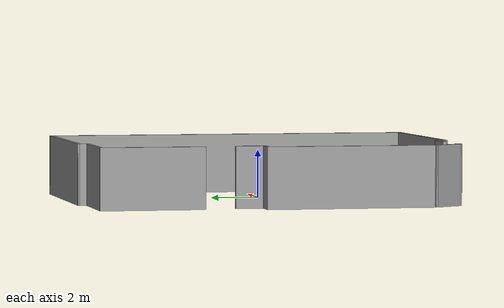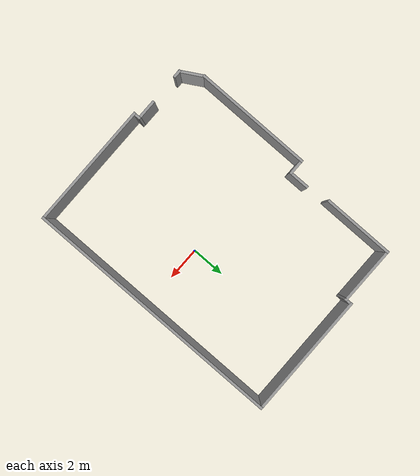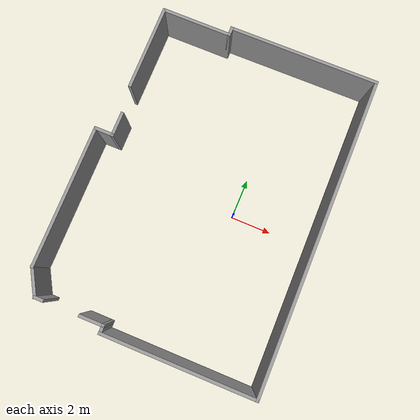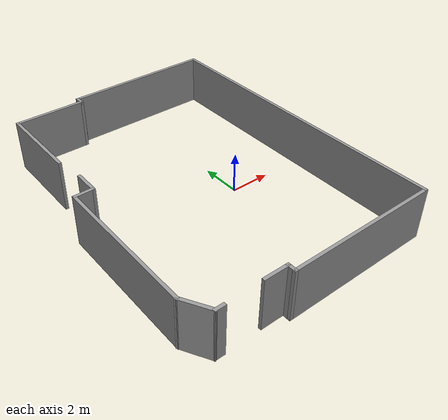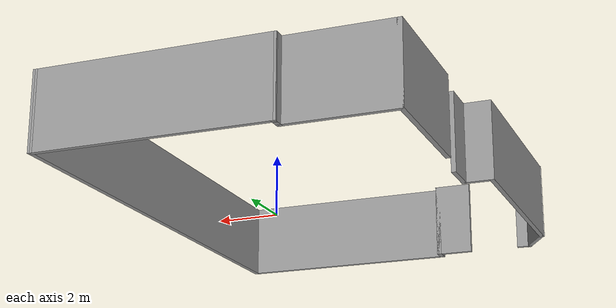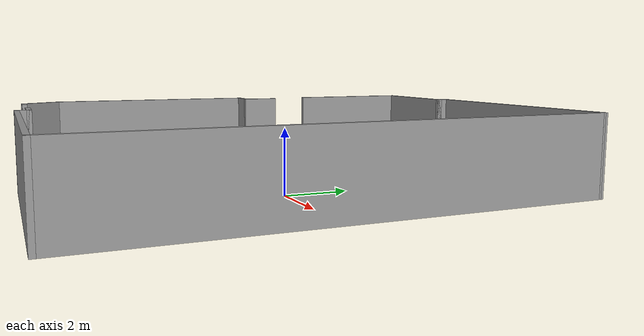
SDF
<?xml version='1.0'?>
<sdf version='1.7'>
  <model name='TD_1'>
    <pose>-1.76747 0.497206 0 0 -0 0</pose>
    <link name='Wall_0'>
      <collision name='Wall_0_Collision'>
        <geometry>
          <box>
            <size>15.5 0.15 2.5</size>
          </box>
        </geometry>
        <pose>0 0 1.25 0 -0 0</pose>
      </collision>
      <visual name='Wall_0_Visual'>
        <pose>0 0 1.25 0 -0 0</pose>
        <geometry>
          <box>
            <size>15.5 0.15 2.5</size>
          </box>
        </geometry>
        <material>
          <script>
            <uri>file://media/materials/scripts/gazebo.material</uri>
            <name>Gazebo/Grey</name>
          </script>
          <ambient>1 1 1 1</ambient>
        </material>
        <meta>
          <layer>0</layer>
        </meta>
      </visual>
      <pose>5.66089 -0.000216 0 0 -0 -1.5708</pose>
    </link>
    <link name='Wall_1'>
      <collision name='Wall_1_Collision'>
        <geometry>
          <box>
            <size>7.5 0.15 2.5</size>
          </box>
        </geometry>
        <pose>0 0 1.25 0 -0 0</pose>
      </collision>
      <visual name='Wall_1_Visual'>
        <pose>0 0 1.25 0 -0 0</pose>
        <geometry>
          <box>
            <size>7.5 0.15 2.5</size>
          </box>
        </geometry>
        <material>
          <script>
            <uri>file://media/materials/scripts/gazebo.material</uri>
            <name>Gazebo/Grey</name>
          </script>
          <ambient>1 1 1 1</ambient>
        </material>
        <meta>
          <layer>0</layer>
        </meta>
      </visual>
      <pose>1.98589 -7.67522 0 0 -0 3.14159</pose>
    </link>
    <link name='Wall_10'>
      <collision name='Wall_10_Collision'>
        <geometry>
          <box>
            <size>1 0.15 2.5</size>
          </box>
        </geometry>
        <pose>0 0 1.25 0 -0 0</pose>
      </collision>
      <visual name='Wall_10_Visual'>
        <pose>0 0 1.25 0 -0 0</pose>
        <geometry>
          <box>
            <size>1 0.15 2.5</size>
          </box>
        </geometry>
        <material>
          <script>
            <uri>file://media/materials/scripts/gazebo.material</uri>
            <name>Gazebo/Grey</name>
          </script>
          <ambient>1 1 1 1</ambient>
        </material>
        <meta>
          <layer>0</layer>
        </meta>
      </visual>
      <pose>-5.20887 0.669584 0 0 -0 0</pose>
    </link>
    <link name='Wall_11'>
      <collision name='Wall_11_Collision'>
        <geometry>
          <box>
            <size>1.25 0.15 2.5</size>
          </box>
        </geometry>
        <pose>0 0 1.25 0 -0 0</pose>
      </collision>
      <visual name='Wall_11_Visual'>
        <pose>0 0 1.25 0 -0 0</pose>
        <geometry>
          <box>
            <size>1.25 0.15 2.5</size>
          </box>
        </geometry>
        <material>
          <script>
            <uri>file://media/materials/scripts/gazebo.material</uri>
            <name>Gazebo/Grey</name>
          </script>
          <ambient>1 1 1 1</ambient>
        </material>
        <meta>
          <layer>0</layer>
        </meta>
      </visual>
      <pose>-4.78387 1.21958 0 0 -0 1.5708</pose>
    </link>
    <link name='Wall_13'>
      <collision name='Wall_13_Collision'>
        <geometry>
          <box>
            <size>4.25 0.15 2.5</size>
          </box>
        </geometry>
        <pose>0 0 1.25 0 -0 0</pose>
      </collision>
      <visual name='Wall_13_Visual'>
        <pose>0 0 1.25 0 -0 0</pose>
        <geometry>
          <box>
            <size>4.25 0.15 2.5</size>
          </box>
        </geometry>
        <material>
          <script>
            <uri>file://media/materials/scripts/gazebo.material</uri>
            <name>Gazebo/Grey</name>
          </script>
          <ambient>1 1 1 1</ambient>
        </material>
        <meta>
          <layer>0</layer>
        </meta>
      </visual>
      <pose>-4.98572 5.23253 0 0 -0 1.5708</pose>
    </link>
    <link name='Wall_14'>
      <collision name='Wall_14_Collision'>
        <geometry>
          <box>
            <size>3.5 0.15 2.5</size>
          </box>
        </geometry>
        <pose>0 0 1.25 0 -0 0</pose>
      </collision>
      <visual name='Wall_14_Visual'>
        <pose>0 0 1.25 0 -0 0</pose>
        <geometry>
          <box>
            <size>3.5 0.15 2.5</size>
          </box>
        </geometry>
        <material>
          <script>
            <uri>file://media/materials/scripts/gazebo.material</uri>
            <name>Gazebo/Grey</name>
          </script>
          <ambient>1 1 1 1</ambient>
        </material>
        <meta>
          <layer>0</layer>
        </meta>
      </visual>
      <pose>-3.31072 7.28253 0 0 -0 0</pose>
    </link>
    <link name='Wall_2'>
      <collision name='Wall_2_Collision'>
        <geometry>
          <box>
            <size>0.5 0.15 2.5</size>
          </box>
        </geometry>
        <pose>0 0 1.25 0 -0 0</pose>
      </collision>
      <visual name='Wall_2_Visual'>
        <pose>0 0 1.25 0 -0 0</pose>
        <geometry>
          <box>
            <size>0.5 0.15 2.5</size>
          </box>
        </geometry>
        <material>
          <script>
            <uri>file://media/materials/scripts/gazebo.material</uri>
            <name>Gazebo/Grey</name>
          </script>
          <ambient>1 1 1 1</ambient>
        </material>
        <meta>
          <layer>0</layer>
        </meta>
      </visual>
      <pose>-1.68911 -7.50022 0 0 -0 1.5708</pose>
    </link>
    <link name='Wall_28'>
      <collision name='Wall_28_Collision'>
        <geometry>
          <box>
            <size>0.5 0.15 2.5</size>
          </box>
        </geometry>
        <pose>0 0 1.25 0 -0 0</pose>
      </collision>
      <visual name='Wall_28_Visual'>
        <pose>0 0 1.25 0 -0 0</pose>
        <geometry>
          <box>
            <size>0.5 0.15 2.5</size>
          </box>
        </geometry>
        <material>
          <script>
            <uri>file://media/materials/scripts/gazebo.material</uri>
            <name>Gazebo/Grey</name>
          </script>
          <ambient>1 1 1 1</ambient>
        </material>
        <meta>
          <layer>0</layer>
        </meta>
      </visual>
      <pose>-1.63572 7.45753 0 0 -0 1.5708</pose>
    </link>
    <link name='Wall_29'>
      <collision name='Wall_29_Collision'>
        <geometry>
          <box>
            <size>7.44673 0.15 2.5</size>
          </box>
        </geometry>
        <pose>0 0 1.25 0 -0 0</pose>
      </collision>
      <visual name='Wall_29_Visual'>
        <pose>0 0 1.25 0 -0 0</pose>
        <geometry>
          <box>
            <size>7.44673 0.15 2.5</size>
          </box>
        </geometry>
        <material>
          <script>
            <uri>file://media/materials/scripts/gazebo.material</uri>
            <name>Gazebo/Grey</name>
          </script>
          <ambient>1 1 1 1</ambient>
        </material>
        <meta>
          <layer>0</layer>
        </meta>
      </visual>
      <pose>2.01259 7.65366 0 0 -0 0.00579</pose>
    </link>
    <link name='Wall_3'>
      <collision name='Wall_3_Collision'>
        <geometry>
          <box>
            <size>1.25 0.15 2.5</size>
          </box>
        </geometry>
        <pose>0 0 1.25 0 -0 0</pose>
      </collision>
      <visual name='Wall_3_Visual'>
        <pose>0 0 1.25 0 -0 0</pose>
        <geometry>
          <box>
            <size>1.25 0.15 2.5</size>
          </box>
        </geometry>
        <material>
          <script>
            <uri>file://media/materials/scripts/gazebo.material</uri>
            <name>Gazebo/Grey</name>
          </script>
          <ambient>1 1 1 1</ambient>
        </material>
        <meta>
          <layer>0</layer>
        </meta>
      </visual>
      <pose>-2.23911 -7.32522 0 0 -0 3.14159</pose>
    </link>
    <link name='Wall_5'>
      <collision name='Wall_5_Collision'>
        <geometry>
          <box>
            <size>0.5 0.15 2.5</size>
          </box>
        </geometry>
        <pose>0 0 1.25 0 -0 0</pose>
      </collision>
      <visual name='Wall_5_Visual'>
        <pose>0 0 1.25 0 -0 0</pose>
        <geometry>
          <box>
            <size>0.5 0.15 2.5</size>
          </box>
        </geometry>
        <material>
          <script>
            <uri>file://media/materials/scripts/gazebo.material</uri>
            <name>Gazebo/Grey</name>
          </script>
          <ambient>1 1 1 1</ambient>
        </material>
        <meta>
          <layer>0</layer>
        </meta>
      </visual>
      <pose>-4.78387 -7.34955 0 0 -0 3.14159</pose>
    </link>
    <link name='Wall_6'>
      <collision name='Wall_6_Collision'>
        <geometry>
          <box>
            <size>1.5 0.15 2.5</size>
          </box>
        </geometry>
        <pose>0 0 1.25 0 -0 0</pose>
      </collision>
      <visual name='Wall_6_Visual'>
        <pose>0 0 1.25 0 -0 0</pose>
        <geometry>
          <box>
            <size>1.5 0.15 2.5</size>
          </box>
        </geometry>
        <material>
          <script>
            <uri>file://media/materials/scripts/gazebo.material</uri>
            <name>Gazebo/Grey</name>
          </script>
          <ambient>1 1 1 1</ambient>
        </material>
        <meta>
          <layer>0</layer>
        </meta>
      </visual>
      <pose>-5.29637 -6.76498 0 0 -0 2.0944</pose>
    </link>
    <link name='Wall_7'>
      <collision name='Wall_7_Collision'>
        <geometry>
          <box>
            <size>7 0.15 2.5</size>
          </box>
        </geometry>
        <pose>0 0 1.25 0 -0 0</pose>
      </collision>
      <visual name='Wall_7_Visual'>
        <pose>0 0 1.25 0 -0 0</pose>
        <geometry>
          <box>
            <size>7 0.15 2.5</size>
          </box>
        </geometry>
        <material>
          <script>
            <uri>file://media/materials/scripts/gazebo.material</uri>
            <name>Gazebo/Grey</name>
          </script>
          <ambient>1 1 1 1</ambient>
        </material>
        <meta>
          <layer>0</layer>
        </meta>
      </visual>
      <pose>-5.63387 -2.75542 0 0 -0 1.5708</pose>
    </link>
    <static>1</static>
  </model>
</sdf>
